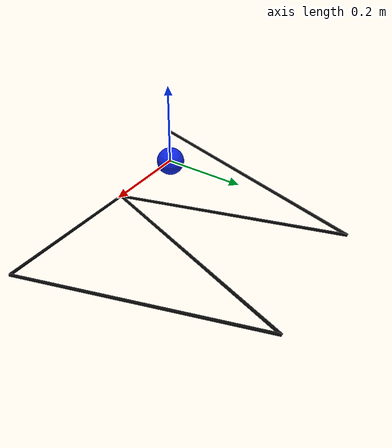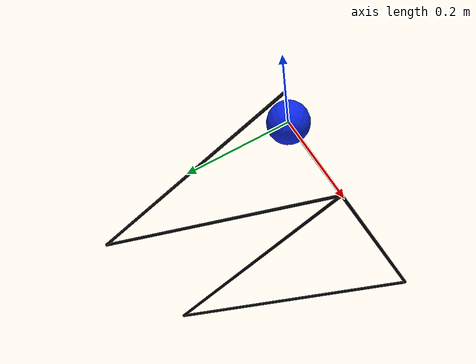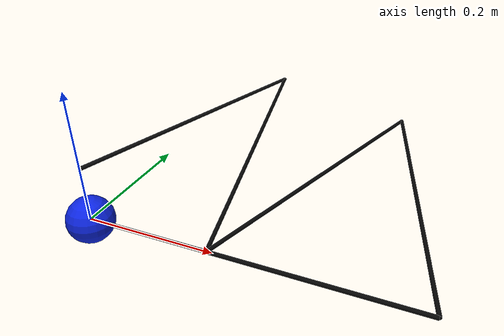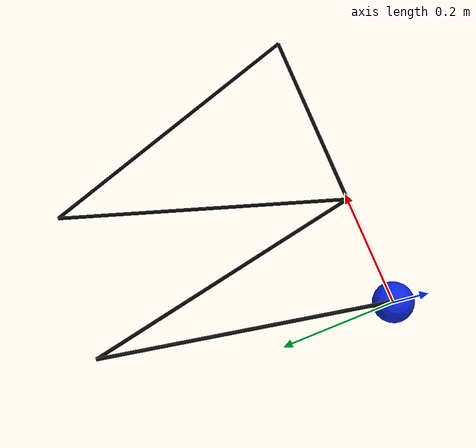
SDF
<?xml version="1.0" ?>
<sdf version="1.9">
  <model name="tether_anchor_chain">
    <static>false</static>
    <link name="anchor_link">
      <pose>0 0 0 0 0 0</pose>
      <inertial>
        <mass>1.0</mass>
        <inertia>
          <ixx>1</ixx>
          <ixy>0</ixy>
          <ixz>0</ixz>
          <iyy>1</iyy>
          <iyz>0</iyz>
          <izz>1</izz>
        </inertia>
      </inertial>
      <visual name="anchor_visual">
        <geometry>
          <sphere>
            <radius>0.035</radius>
          </sphere>
        </geometry>
        <material>
          <diffuse>0.05 0.15 0.9 1.0</diffuse>
          <ambient>0.05 0.15 0.9 1.0</ambient>
        </material>
      </visual>
      <collision name="anchor_collision">
        <geometry>
          <sphere>
            <radius>0.025</radius>
          </sphere>
        </geometry>
      </collision>
    </link>
    <joint name="anchor_world_fixed" type="fixed">
      <parent>world</parent>
      <child>anchor_link</child>
    </joint>
    <link name="tether_link_1">
      <pose relative_to="anchor_link">0 0 0 0 -0 0</pose>
      <inertial>
        <pose>0.25 0 0 0 1.57079632679 0</pose>
        <mass>0.03</mass>
        <inertia>
          <ixx>1.35e-07</ixx>
          <ixy>0</ixy>
          <ixz>0</ixz>
          <iyy>0.0006250675</iyy>
          <iyz>0</iyz>
          <izz>0.0006250675</izz>
        </inertia>
      </inertial>
      <visual name="tether_link_1_visual">
        <pose>0.25 0 0 0 1.57079632679 0</pose>
        <geometry>
          <cylinder>
            <radius>0.003</radius>
            <length>0.5</length>
          </cylinder>
        </geometry>
        <material>
          <diffuse>0.02 0.02 0.02 1.0</diffuse>
          <ambient>0.02 0.02 0.02 1.0</ambient>
        </material>
      </visual>

    </link>
    <joint name="tether_joint_1" type="ball">
      <pose relative_to="anchor_link">0 0 0 0 0 0</pose>
      <parent>anchor_link</parent>
      <child>tether_link_1</child>
    </joint>
    <link name="tether_link_2">
      <pose relative_to="tether_link_1">0.5 0 0 0 -0 1.88495559</pose>
      <inertial>
        <pose>0.25 0 0 0 1.57079632679 0</pose>
        <mass>0.03</mass>
        <inertia>
          <ixx>1.35e-07</ixx>
          <ixy>0</ixy>
          <ixz>0</ixz>
          <iyy>0.0006250675</iyy>
          <iyz>0</iyz>
          <izz>0.0006250675</izz>
        </inertia>
      </inertial>
      <visual name="tether_link_2_visual">
        <pose>0.25 0 0 0 1.57079632679 0</pose>
        <geometry>
          <cylinder>
            <radius>0.003</radius>
            <length>0.5</length>
          </cylinder>
        </geometry>
        <material>
          <diffuse>0.02 0.02 0.02 1.0</diffuse>
          <ambient>0.02 0.02 0.02 1.0</ambient>
        </material>
      </visual>

    </link>
    <joint name="tether_joint_2" type="ball">
      <pose relative_to="tether_link_1">0.5 0 0 0 0 0</pose>
      <parent>tether_link_1</parent>
      <child>tether_link_2</child>
    </joint>
    <link name="tether_link_3">
      <pose relative_to="tether_link_2">0.5 0 0 0 -0 2.51327412</pose>
      <inertial>
        <pose>0.25 0 0 0 1.57079632679 0</pose>
        <mass>0.03</mass>
        <inertia>
          <ixx>1.35e-07</ixx>
          <ixy>0</ixy>
          <ixz>0</ixz>
          <iyy>0.0006250675</iyy>
          <iyz>0</iyz>
          <izz>0.0006250675</izz>
        </inertia>
      </inertial>
      <visual name="tether_link_3_visual">
        <pose>0.25 0 0 0 1.57079632679 0</pose>
        <geometry>
          <cylinder>
            <radius>0.003</radius>
            <length>0.5</length>
          </cylinder>
        </geometry>
        <material>
          <diffuse>0.02 0.02 0.02 1.0</diffuse>
          <ambient>0.02 0.02 0.02 1.0</ambient>
        </material>
      </visual>

    </link>
    <joint name="tether_joint_3" type="ball">
      <pose relative_to="tether_link_2">0.5 0 0 0 0 0</pose>
      <parent>tether_link_2</parent>
      <child>tether_link_3</child>
    </joint>
    <link name="tether_link_4">
      <pose relative_to="tether_link_3">0.5 0 0 0 -0.0851026884 -2.63456316</pose>
      <inertial>
        <pose>0.25 0 0 0 1.57079632679 0</pose>
        <mass>0.03</mass>
        <inertia>
          <ixx>1.35e-07</ixx>
          <ixy>0</ixy>
          <ixz>0</ixz>
          <iyy>0.0006250675</iyy>
          <iyz>0</iyz>
          <izz>0.0006250675</izz>
        </inertia>
      </inertial>
      <visual name="tether_link_4_visual">
        <pose>0.25 0 0 0 1.57079632679 0</pose>
        <geometry>
          <cylinder>
            <radius>0.003</radius>
            <length>0.5</length>
          </cylinder>
        </geometry>
        <material>
          <diffuse>0.02 0.02 0.02 1.0</diffuse>
          <ambient>0.02 0.02 0.02 1.0</ambient>
        </material>
      </visual>

    </link>
    <joint name="tether_joint_4" type="ball">
      <pose relative_to="tether_link_3">0.5 0 0 0 0 0</pose>
      <parent>tether_link_3</parent>
      <child>tether_link_4</child>
    </joint>
    <link name="tether_link_5">
      <pose relative_to="tether_link_4">0.5 0 0 0.0324209143 -0.163894326 2.75182278</pose>
      <inertial>
        <pose>0.25 0 0 0 1.57079632679 0</pose>
        <mass>0.03</mass>
        <inertia>
          <ixx>1.35e-07</ixx>
          <ixy>0</ixy>
          <ixz>0</ixz>
          <iyy>0.0006250675</iyy>
          <iyz>0</iyz>
          <izz>0.0006250675</izz>
        </inertia>
      </inertial>
      <visual name="tether_link_5_visual">
        <pose>0.25 0 0 0 1.57079632679 0</pose>
        <geometry>
          <cylinder>
            <radius>0.003</radius>
            <length>0.5</length>
          </cylinder>
        </geometry>
        <material>
          <diffuse>0.05 0.05 0.05 1.0</diffuse>
          <ambient>0.05 0.05 0.05 1.0</ambient>
        </material>
      </visual>

    </link>
    <joint name="tether_joint_5" type="ball">
      <pose relative_to="tether_link_4">0.5 0 0 0 0 0</pose>
      <parent>tether_link_4</parent>
      <child>tether_link_5</child>
    </joint>
    <plugin filename="libTetherForceConstraint.so" name="drone_cabo::TetherForceConstraint">
      <drone_model>x500_0</drone_model>
      <drone_link>base_link</drone_link>
      <tether_model>tether_anchor_chain</tether_model>
      <tether_link>tether_link_5</tether_link>
      <drone_offset>0 0 -0.12</drone_offset>
      <tether_offset>0.5 0 0</tether_offset>
      <stiffness>5</stiffness>
      <damping>0.5</damping>
      <max_force>3</max_force>
    </plugin>
  </model>
</sdf>
